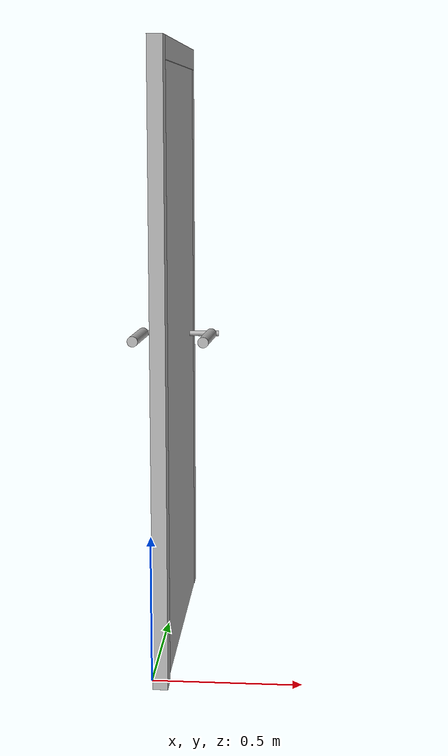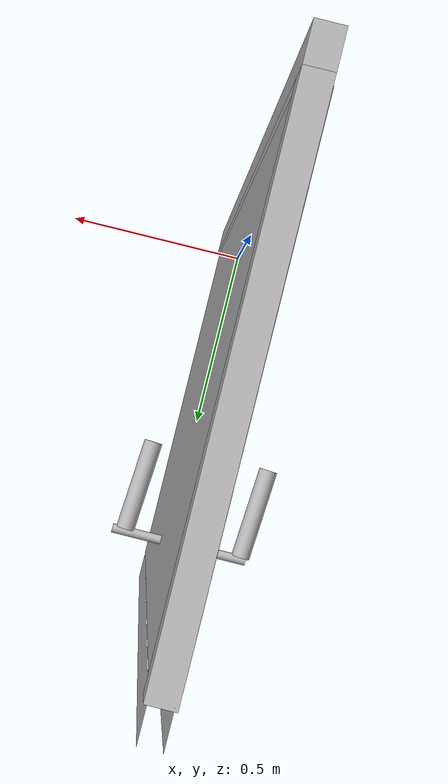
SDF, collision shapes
<?xml version="1.0" ?>
<sdf version="1.5">
  <model name="Hinged_door">
    <link name="frame">
      <pose>0.06 -0.0005 0 0 0 0</pose>
      <collision name="Door_frame_hinge_side_collison">
        <pose>-0.025145 -0.03429 1.0541 0 0 0</pose>
        <geometry>
          <box>
            <size>0.05029 0.06858 2.10820</size>
          </box>
        </geometry>
      </collision>
      <collision name="Door_frame_lockside_front_collision">
         <pose>-0.005145 0.95631 1.0541 0 0 0</pose>
         <geometry>
          <box>
             <size>0.00005 0.06858 2.10820</size>
          </box>
        </geometry>
      </collision>
      <collision name="Door_frame_lockside_back_collision">
        <pose>-0.0445 0.95631 1.0541 0 0 0</pose>
        <geometry>
          <box>
             <size>0.00005 0.06858 2.10820</size>
          </box>
        </geometry>
      </collision>
      <collision name="Door_frame_top_collision">
        <pose>-0.0251450 0.46482 2.07137 0 0 0</pose>
        <geometry>
          <box>
            <size>0.05029 0.92964 0.07366</size>
          </box>
        </geometry>
      </collision>
      <visual name="visual">
        <pose>0 -0.06858 0 0 0 0</pose>
         <geometry>
          <mesh>
            <uri>file:///workspace/src/simulation/tiplu_world/models/Hinged_door/meshes/frame.dae</uri>
          </mesh>
        </geometry>
      </visual>

    </link>
    <link name="door">
      <pose>-0.0 0.000 2.040 3.14159 0 1.57</pose>
      <inertial>
        <mass>41.3256</mass>
        <pose>0.4569 0.0349 1.016 0 0 0</pose>
        <inertia>
          <ixx>14.2053</ixx>
          <ixy>0.0004</ixy>
          <ixz>0.0000</ixz>
          <iyy>17.1997</iyy>
          <iyz>0.0000</iyz>
          <izz>3.0298</izz>
        </inertia>
      </inertial>
      <collision name="door_leaf_side_a_collision">
        <pose>0.4569 0.00349 1.016 0 0 0</pose>
        <geometry>
          <box>
            <size>0.9144 0.00004 2.032</size>
          </box>
        </geometry>
      </collision>
      <collision name="door_leaf_side_b_collision">
       <pose>0.4569 0.0549 1.016 0 0 0</pose>
        <geometry>
          <box>
            <size>0.9144 0.00004 2.032</size>
          </box>
        </geometry>
      </collision>
      <visual name="visual">
        <pose>0 -0.06858 0 0 0 0</pose>
        <geometry>
          <mesh>
            <uri>file:///workspace/src/simulation/tiplu_world/models/Hinged_door/meshes/door.dae</uri>
          </mesh>
        </geometry>
      </visual>
    </link>
    <link name="handles">
      <pose>0.0 0.8 1.05 0 3.14 1.57</pose>
        <collision name="handle1_part1_collision">
          <pose>0.015 -0.015 0 -1.57 0 0</pose>
          <geometry>
           <cylinder>
              <radius>0.01</radius>
              <length>0.3</length>
            </cylinder>
          </geometry>
        </collision>
        <visual name="handle1_part1_visual">
          <pose>0.015 -0.015 0 -1.57 0 0</pose>
          <geometry>
            <cylinder>
              <radius>0.01</radius>
              <length>0.3</length>
            </cylinder>
          </geometry>
        </visual>
        <collision name="handle1_part2_collision">
          <pose>0.12 -0.13 0 -1.57 0 -1.5</pose>
          <geometry>
           <cylinder>
              <radius>0.02</radius>
              <length>0.2</length>
            </cylinder>
          </geometry>
        </collision>
       <visual name="handle1_part2_visual">
        <pose>0.12 -0.13 0 -1.57 0 -1.5</pose>
        <geometry>
          <cylinder>
            <radius>0.02</radius>
            <length>0.2</length>
          </cylinder>
        </geometry>
      </visual>
       <collision name="handle1_part3_collision">
          <pose>0.12 0.13 0 -1.57 0 -1.5</pose>
          <geometry>
           <cylinder>
              <radius>0.02</radius>
              <length>0.2</length>
            </cylinder>
          </geometry>
        </collision>
      <visual name="handle1_part3_visual">
        <pose>0.12 0.13 0 -1.57 0 -1.5</pose>
        <geometry>
          <cylinder>
            <radius>0.02</radius>
            <length>0.2</length>
          </cylinder>
        </geometry>
      </visual>

    </link>
    <joint name="handle" type="revolute">
      <parent>door</parent>
      <child>handles</child>
      <pose>0.015 0 0 0 0 0</pose>
      <axis>
        <xyz>1 0 0</xyz>
        <limit>
          <lower>0</lower>
          <upper>1.58</upper>
        </limit>
        <dynamics>
          <damping>1.0</damping>
          <friction>10</friction>
        </dynamics>
        <use_parent_model_frame>true</use_parent_model_frame>
      </axis>
      <physics>
        <ode>
          <cfm_damping>1</cfm_damping>
        </ode>
      </physics>
    </joint>
    <joint name="hinge" type="revolute">
      <parent>frame</parent>
      <child>door</child>
      <axis>
        <xyz>0 0 1</xyz>
        <limit>
          <lower>0</lower>
          <upper>1.58</upper>
        </limit>
        <dynamics>
          <damping>1.0</damping>
          <friction>10.0</friction>
        </dynamics>
        <use_parent_model_frame>true</use_parent_model_frame>
      </axis>
      <physics>
        <ode>
          <cfm_damping>1</cfm_damping>
        </ode>
      </physics>
    </joint>
    <joint name="world_joint" type="fixed">
      <child>frame</child>
      <parent>world</parent>
      <axis>
        <limit>
          <lower>0</lower>
          <upper>0</upper>
        </limit>
        <xyz>0 1 0</xyz>
        <dynamics>
          <damping>1.0</damping>
        </dynamics>
        <use_parent_model_frame>true</use_parent_model_frame>
      </axis>
      <physics>
        <ode>
          <cfm_damping>1</cfm_damping>
        </ode>
      </physics>
    </joint>
  </model>
</sdf>
